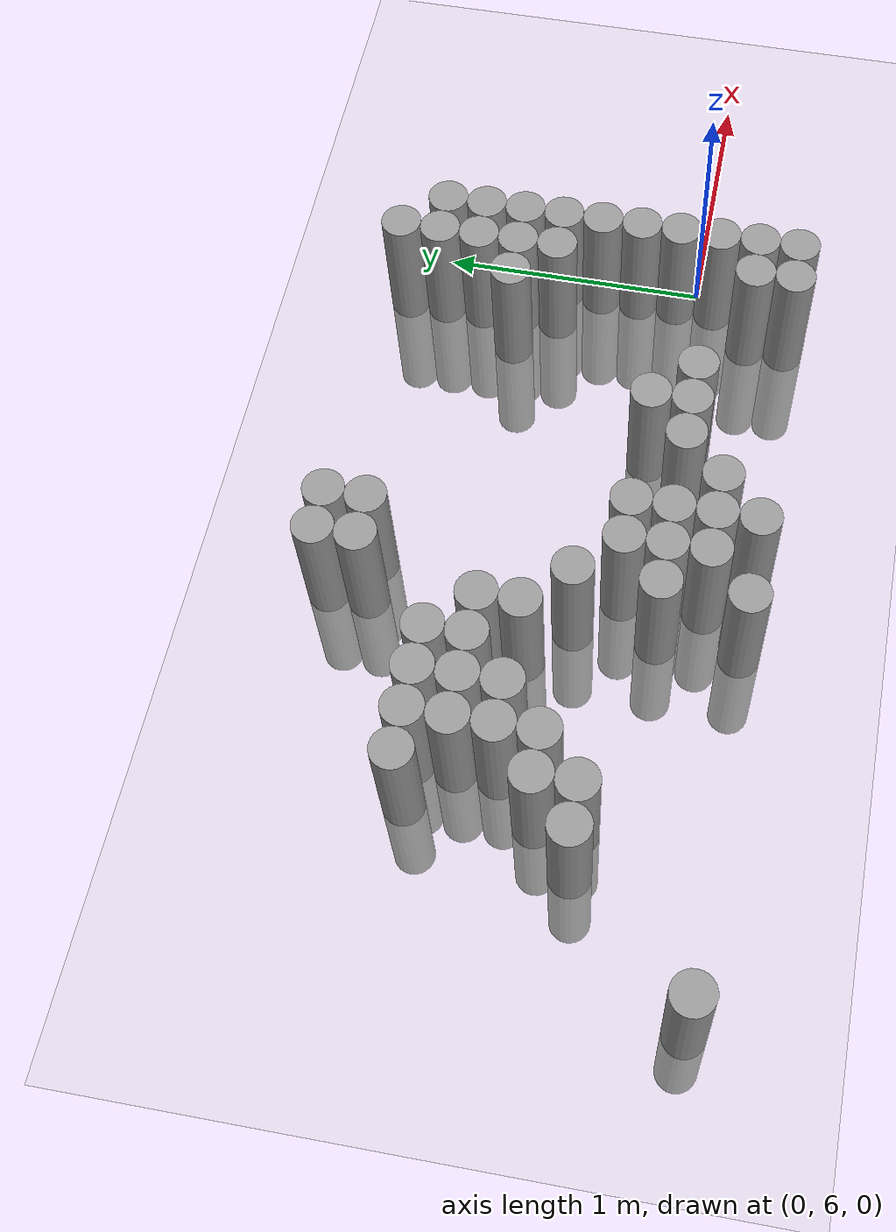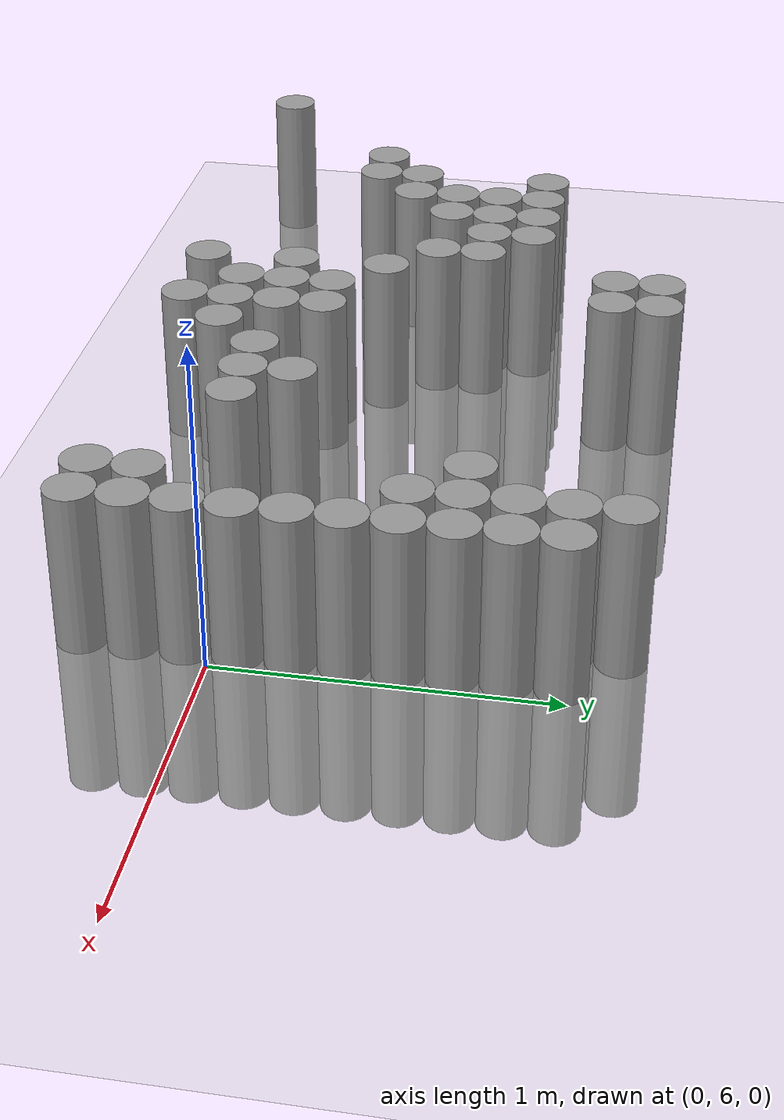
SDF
<sdf version="1.6">
 <world name="default">
  <model name="ground_plane">
   <static>1</static>
   <link name="link">
    <collision name="collision">
     <geometry><plane><normal>0 0 1</normal><size>100 100</size></plane></geometry>
     <surface><friction><ode><mu>100</mu><mu2>50</mu2></ode></friction></surface>
    </collision>
    <visual name="visual">
     <cast_shadows>0</cast_shadows>
     <geometry><plane><normal>0 0 1</normal><size>100 100</size></plane></geometry>
     <material>
      <script><uri>file://media/materials/scripts/gazebo.material</uri><name>Gazebo/Grey</name></script>
     </material>
    </visual>
   </link>
  </model>
  <model name="unit_cylinder_164">
   <pose>-2.925000 5.625000 0.000000 0.000000 0.000000 0.000000</pose>
   <link name="link">
    <inertial>
     <mass>1</mass>
     <inertia><ixx>0.145833</ixx><ixy>0</ixy><ixz>0</ixz><iyy>0.145833</iyy><iyz>0</iyz><izz>0.125</izz></inertia>
    </inertial>
    <collision name="collision">
     <geometry><cylinder><radius>0.075000</radius><length>1</length></cylinder></geometry>
    </collision>
    <visual name="visual">
     <geometry><cylinder><radius>0.075000</radius><length>1</length></cylinder></geometry>
     <material>
      <script><name>Gazebo/Grey</name><uri>file://media/materials/scripts/gazebo.material</uri></script>
     </material>
    </visual>
   </link>
  </model>
  <model name="unit_cylinder_165">
   <pose>-2.475000 6.075000 0.000000 0.000000 0.000000 0.000000</pose>
   <link name="link">
    <inertial>
     <mass>1</mass>
     <inertia><ixx>0.145833</ixx><ixy>0</ixy><ixz>0</ixz><iyy>0.145833</iyy><iyz>0</iyz><izz>0.125</izz></inertia>
    </inertial>
    <collision name="collision">
     <geometry><cylinder><radius>0.075000</radius><length>1</length></cylinder></geometry>
    </collision>
    <visual name="visual">
     <geometry><cylinder><radius>0.075000</radius><length>1</length></cylinder></geometry>
     <material>
      <script><name>Gazebo/Grey</name><uri>file://media/materials/scripts/gazebo.material</uri></script>
     </material>
    </visual>
   </link>
  </model>
  <model name="unit_cylinder_166">
   <pose>-2.325000 6.075000 0.000000 0.000000 0.000000 0.000000</pose>
   <link name="link">
    <inertial>
     <mass>1</mass>
     <inertia><ixx>0.145833</ixx><ixy>0</ixy><ixz>0</ixz><iyy>0.145833</iyy><iyz>0</iyz><izz>0.125</izz></inertia>
    </inertial>
    <collision name="collision">
     <geometry><cylinder><radius>0.075000</radius><length>1</length></cylinder></geometry>
    </collision>
    <visual name="visual">
     <geometry><cylinder><radius>0.075000</radius><length>1</length></cylinder></geometry>
     <material>
      <script><name>Gazebo/Grey</name><uri>file://media/materials/scripts/gazebo.material</uri></script>
     </material>
    </visual>
   </link>
  </model>
  <model name="unit_cylinder_167">
   <pose>-2.325000 6.225000 0.000000 0.000000 0.000000 0.000000</pose>
   <link name="link">
    <inertial>
     <mass>1</mass>
     <inertia><ixx>0.145833</ixx><ixy>0</ixy><ixz>0</ixz><iyy>0.145833</iyy><iyz>0</iyz><izz>0.125</izz></inertia>
    </inertial>
    <collision name="collision">
     <geometry><cylinder><radius>0.075000</radius><length>1</length></cylinder></geometry>
    </collision>
    <visual name="visual">
     <geometry><cylinder><radius>0.075000</radius><length>1</length></cylinder></geometry>
     <material>
      <script><name>Gazebo/Grey</name><uri>file://media/materials/scripts/gazebo.material</uri></script>
     </material>
    </visual>
   </link>
  </model>
  <model name="unit_cylinder_168">
   <pose>-2.325000 6.675000 0.000000 0.000000 0.000000 0.000000</pose>
   <link name="link">
    <inertial>
     <mass>1</mass>
     <inertia><ixx>0.145833</ixx><ixy>0</ixy><ixz>0</ixz><iyy>0.145833</iyy><iyz>0</iyz><izz>0.125</izz></inertia>
    </inertial>
    <collision name="collision">
     <geometry><cylinder><radius>0.075000</radius><length>1</length></cylinder></geometry>
    </collision>
    <visual name="visual">
     <geometry><cylinder><radius>0.075000</radius><length>1</length></cylinder></geometry>
     <material>
      <script><name>Gazebo/Grey</name><uri>file://media/materials/scripts/gazebo.material</uri></script>
     </material>
    </visual>
   </link>
  </model>
  <model name="unit_cylinder_169">
   <pose>-2.175000 6.225000 0.000000 0.000000 0.000000 0.000000</pose>
   <link name="link">
    <inertial>
     <mass>1</mass>
     <inertia><ixx>0.145833</ixx><ixy>0</ixy><ixz>0</ixz><iyy>0.145833</iyy><iyz>0</iyz><izz>0.125</izz></inertia>
    </inertial>
    <collision name="collision">
     <geometry><cylinder><radius>0.075000</radius><length>1</length></cylinder></geometry>
    </collision>
    <visual name="visual">
     <geometry><cylinder><radius>0.075000</radius><length>1</length></cylinder></geometry>
     <material>
      <script><name>Gazebo/Grey</name><uri>file://media/materials/scripts/gazebo.material</uri></script>
     </material>
    </visual>
   </link>
  </model>
  <model name="unit_cylinder_170">
   <pose>-2.175000 6.375000 0.000000 0.000000 0.000000 0.000000</pose>
   <link name="link">
    <inertial>
     <mass>1</mass>
     <inertia><ixx>0.145833</ixx><ixy>0</ixy><ixz>0</ixz><iyy>0.145833</iyy><iyz>0</iyz><izz>0.125</izz></inertia>
    </inertial>
    <collision name="collision">
     <geometry><cylinder><radius>0.075000</radius><length>1</length></cylinder></geometry>
    </collision>
    <visual name="visual">
     <geometry><cylinder><radius>0.075000</radius><length>1</length></cylinder></geometry>
     <material>
      <script><name>Gazebo/Grey</name><uri>file://media/materials/scripts/gazebo.material</uri></script>
     </material>
    </visual>
   </link>
  </model>
  <model name="unit_cylinder_171">
   <pose>-2.175000 6.525000 0.000000 0.000000 0.000000 0.000000</pose>
   <link name="link">
    <inertial>
     <mass>1</mass>
     <inertia><ixx>0.145833</ixx><ixy>0</ixy><ixz>0</ixz><iyy>0.145833</iyy><iyz>0</iyz><izz>0.125</izz></inertia>
    </inertial>
    <collision name="collision">
     <geometry><cylinder><radius>0.075000</radius><length>1</length></cylinder></geometry>
    </collision>
    <visual name="visual">
     <geometry><cylinder><radius>0.075000</radius><length>1</length></cylinder></geometry>
     <material>
      <script><name>Gazebo/Grey</name><uri>file://media/materials/scripts/gazebo.material</uri></script>
     </material>
    </visual>
   </link>
  </model>
  <model name="unit_cylinder_172">
   <pose>-2.175000 6.675000 0.000000 0.000000 0.000000 0.000000</pose>
   <link name="link">
    <inertial>
     <mass>1</mass>
     <inertia><ixx>0.145833</ixx><ixy>0</ixy><ixz>0</ixz><iyy>0.145833</iyy><iyz>0</iyz><izz>0.125</izz></inertia>
    </inertial>
    <collision name="collision">
     <geometry><cylinder><radius>0.075000</radius><length>1</length></cylinder></geometry>
    </collision>
    <visual name="visual">
     <geometry><cylinder><radius>0.075000</radius><length>1</length></cylinder></geometry>
     <material>
      <script><name>Gazebo/Grey</name><uri>file://media/materials/scripts/gazebo.material</uri></script>
     </material>
    </visual>
   </link>
  </model>
  <model name="unit_cylinder_173">
   <pose>-2.025000 6.375000 0.000000 0.000000 0.000000 0.000000</pose>
   <link name="link">
    <inertial>
     <mass>1</mass>
     <inertia><ixx>0.145833</ixx><ixy>0</ixy><ixz>0</ixz><iyy>0.145833</iyy><iyz>0</iyz><izz>0.125</izz></inertia>
    </inertial>
    <collision name="collision">
     <geometry><cylinder><radius>0.075000</radius><length>1</length></cylinder></geometry>
    </collision>
    <visual name="visual">
     <geometry><cylinder><radius>0.075000</radius><length>1</length></cylinder></geometry>
     <material>
      <script><name>Gazebo/Grey</name><uri>file://media/materials/scripts/gazebo.material</uri></script>
     </material>
    </visual>
   </link>
  </model>
  <model name="unit_cylinder_174">
   <pose>-2.025000 6.525000 0.000000 0.000000 0.000000 0.000000</pose>
   <link name="link">
    <inertial>
     <mass>1</mass>
     <inertia><ixx>0.145833</ixx><ixy>0</ixy><ixz>0</ixz><iyy>0.145833</iyy><iyz>0</iyz><izz>0.125</izz></inertia>
    </inertial>
    <collision name="collision">
     <geometry><cylinder><radius>0.075000</radius><length>1</length></cylinder></geometry>
    </collision>
    <visual name="visual">
     <geometry><cylinder><radius>0.075000</radius><length>1</length></cylinder></geometry>
     <material>
      <script><name>Gazebo/Grey</name><uri>file://media/materials/scripts/gazebo.material</uri></script>
     </material>
    </visual>
   </link>
  </model>
  <model name="unit_cylinder_175">
   <pose>-2.025000 6.675000 0.000000 0.000000 0.000000 0.000000</pose>
   <link name="link">
    <inertial>
     <mass>1</mass>
     <inertia><ixx>0.145833</ixx><ixy>0</ixy><ixz>0</ixz><iyy>0.145833</iyy><iyz>0</iyz><izz>0.125</izz></inertia>
    </inertial>
    <collision name="collision">
     <geometry><cylinder><radius>0.075000</radius><length>1</length></cylinder></geometry>
    </collision>
    <visual name="visual">
     <geometry><cylinder><radius>0.075000</radius><length>1</length></cylinder></geometry>
     <material>
      <script><name>Gazebo/Grey</name><uri>file://media/materials/scripts/gazebo.material</uri></script>
     </material>
    </visual>
   </link>
  </model>
  <model name="unit_cylinder_176">
   <pose>-1.875000 6.525000 0.000000 0.000000 0.000000 0.000000</pose>
   <link name="link">
    <inertial>
     <mass>1</mass>
     <inertia><ixx>0.145833</ixx><ixy>0</ixy><ixz>0</ixz><iyy>0.145833</iyy><iyz>0</iyz><izz>0.125</izz></inertia>
    </inertial>
    <collision name="collision">
     <geometry><cylinder><radius>0.075000</radius><length>1</length></cylinder></geometry>
    </collision>
    <visual name="visual">
     <geometry><cylinder><radius>0.075000</radius><length>1</length></cylinder></geometry>
     <material>
      <script><name>Gazebo/Grey</name><uri>file://media/materials/scripts/gazebo.material</uri></script>
     </material>
    </visual>
   </link>
  </model>
  <model name="unit_cylinder_177">
   <pose>-1.875000 6.675000 0.000000 0.000000 0.000000 0.000000</pose>
   <link name="link">
    <inertial>
     <mass>1</mass>
     <inertia><ixx>0.145833</ixx><ixy>0</ixy><ixz>0</ixz><iyy>0.145833</iyy><iyz>0</iyz><izz>0.125</izz></inertia>
    </inertial>
    <collision name="collision">
     <geometry><cylinder><radius>0.075000</radius><length>1</length></cylinder></geometry>
    </collision>
    <visual name="visual">
     <geometry><cylinder><radius>0.075000</radius><length>1</length></cylinder></geometry>
     <material>
      <script><name>Gazebo/Grey</name><uri>file://media/materials/scripts/gazebo.material</uri></script>
     </material>
    </visual>
   </link>
  </model>
  <model name="unit_cylinder_180">
   <pose>-1.725000 6.375000 0.000000 0.000000 0.000000 0.000000</pose>
   <link name="link">
    <inertial>
     <mass>1</mass>
     <inertia><ixx>0.145833</ixx><ixy>0</ixy><ixz>0</ixz><iyy>0.145833</iyy><iyz>0</iyz><izz>0.125</izz></inertia>
    </inertial>
    <collision name="collision">
     <geometry><cylinder><radius>0.075000</radius><length>1</length></cylinder></geometry>
    </collision>
    <visual name="visual">
     <geometry><cylinder><radius>0.075000</radius><length>1</length></cylinder></geometry>
     <material>
      <script><name>Gazebo/Grey</name><uri>file://media/materials/scripts/gazebo.material</uri></script>
     </material>
    </visual>
   </link>
  </model>
  <model name="unit_cylinder_181">
   <pose>-1.725000 6.525000 0.000000 0.000000 0.000000 0.000000</pose>
   <link name="link">
    <inertial>
     <mass>1</mass>
     <inertia><ixx>0.145833</ixx><ixy>0</ixy><ixz>0</ixz><iyy>0.145833</iyy><iyz>0</iyz><izz>0.125</izz></inertia>
    </inertial>
    <collision name="collision">
     <geometry><cylinder><radius>0.075000</radius><length>1</length></cylinder></geometry>
    </collision>
    <visual name="visual">
     <geometry><cylinder><radius>0.075000</radius><length>1</length></cylinder></geometry>
     <material>
      <script><name>Gazebo/Grey</name><uri>file://media/materials/scripts/gazebo.material</uri></script>
     </material>
    </visual>
   </link>
  </model>
  <model name="unit_cylinder_184">
   <pose>-1.575000 5.625000 0.000000 0.000000 0.000000 0.000000</pose>
   <link name="link">
    <inertial>
     <mass>1</mass>
     <inertia><ixx>0.145833</ixx><ixy>0</ixy><ixz>0</ixz><iyy>0.145833</iyy><iyz>0</iyz><izz>0.125</izz></inertia>
    </inertial>
    <collision name="collision">
     <geometry><cylinder><radius>0.075000</radius><length>1</length></cylinder></geometry>
    </collision>
    <visual name="visual">
     <geometry><cylinder><radius>0.075000</radius><length>1</length></cylinder></geometry>
     <material>
      <script><name>Gazebo/Grey</name><uri>file://media/materials/scripts/gazebo.material</uri></script>
     </material>
    </visual>
   </link>
  </model>
  <model name="unit_cylinder_185">
   <pose>-1.575000 5.925000 0.000000 0.000000 0.000000 0.000000</pose>
   <link name="link">
    <inertial>
     <mass>1</mass>
     <inertia><ixx>0.145833</ixx><ixy>0</ixy><ixz>0</ixz><iyy>0.145833</iyy><iyz>0</iyz><izz>0.125</izz></inertia>
    </inertial>
    <collision name="collision">
     <geometry><cylinder><radius>0.075000</radius><length>1</length></cylinder></geometry>
    </collision>
    <visual name="visual">
     <geometry><cylinder><radius>0.075000</radius><length>1</length></cylinder></geometry>
     <material>
      <script><name>Gazebo/Grey</name><uri>file://media/materials/scripts/gazebo.material</uri></script>
     </material>
    </visual>
   </link>
  </model>
  <model name="unit_cylinder_186">
   <pose>-1.575000 6.225000 0.000000 0.000000 0.000000 0.000000</pose>
   <link name="link">
    <inertial>
     <mass>1</mass>
     <inertia><ixx>0.145833</ixx><ixy>0</ixy><ixz>0</ixz><iyy>0.145833</iyy><iyz>0</iyz><izz>0.125</izz></inertia>
    </inertial>
    <collision name="collision">
     <geometry><cylinder><radius>0.075000</radius><length>1</length></cylinder></geometry>
    </collision>
    <visual name="visual">
     <geometry><cylinder><radius>0.075000</radius><length>1</length></cylinder></geometry>
     <material>
      <script><name>Gazebo/Grey</name><uri>file://media/materials/scripts/gazebo.material</uri></script>
     </material>
    </visual>
   </link>
  </model>
  <model name="unit_cylinder_187">
   <pose>-1.575000 6.975000 0.000000 0.000000 0.000000 0.000000</pose>
   <link name="link">
    <inertial>
     <mass>1</mass>
     <inertia><ixx>0.145833</ixx><ixy>0</ixy><ixz>0</ixz><iyy>0.145833</iyy><iyz>0</iyz><izz>0.125</izz></inertia>
    </inertial>
    <collision name="collision">
     <geometry><cylinder><radius>0.075000</radius><length>1</length></cylinder></geometry>
    </collision>
    <visual name="visual">
     <geometry><cylinder><radius>0.075000</radius><length>1</length></cylinder></geometry>
     <material>
      <script><name>Gazebo/Grey</name><uri>file://media/materials/scripts/gazebo.material</uri></script>
     </material>
    </visual>
   </link>
  </model>
  <model name="unit_cylinder_188">
   <pose>-1.575000 7.125000 0.000000 0.000000 0.000000 0.000000</pose>
   <link name="link">
    <inertial>
     <mass>1</mass>
     <inertia><ixx>0.145833</ixx><ixy>0</ixy><ixz>0</ixz><iyy>0.145833</iyy><iyz>0</iyz><izz>0.125</izz></inertia>
    </inertial>
    <collision name="collision">
     <geometry><cylinder><radius>0.075000</radius><length>1</length></cylinder></geometry>
    </collision>
    <visual name="visual">
     <geometry><cylinder><radius>0.075000</radius><length>1</length></cylinder></geometry>
     <material>
      <script><name>Gazebo/Grey</name><uri>file://media/materials/scripts/gazebo.material</uri></script>
     </material>
    </visual>
   </link>
  </model>
  <model name="unit_cylinder_194">
   <pose>-1.425000 5.775000 0.000000 0.000000 0.000000 0.000000</pose>
   <link name="link">
    <inertial>
     <mass>1</mass>
     <inertia><ixx>0.145833</ixx><ixy>0</ixy><ixz>0</ixz><iyy>0.145833</iyy><iyz>0</iyz><izz>0.125</izz></inertia>
    </inertial>
    <collision name="collision">
     <geometry><cylinder><radius>0.075000</radius><length>1</length></cylinder></geometry>
    </collision>
    <visual name="visual">
     <geometry><cylinder><radius>0.075000</radius><length>1</length></cylinder></geometry>
     <material>
      <script><name>Gazebo/Grey</name><uri>file://media/materials/scripts/gazebo.material</uri></script>
     </material>
    </visual>
   </link>
  </model>
  <model name="unit_cylinder_195">
   <pose>-1.425000 5.925000 0.000000 0.000000 0.000000 0.000000</pose>
   <link name="link">
    <inertial>
     <mass>1</mass>
     <inertia><ixx>0.145833</ixx><ixy>0</ixy><ixz>0</ixz><iyy>0.145833</iyy><iyz>0</iyz><izz>0.125</izz></inertia>
    </inertial>
    <collision name="collision">
     <geometry><cylinder><radius>0.075000</radius><length>1</length></cylinder></geometry>
    </collision>
    <visual name="visual">
     <geometry><cylinder><radius>0.075000</radius><length>1</length></cylinder></geometry>
     <material>
      <script><name>Gazebo/Grey</name><uri>file://media/materials/scripts/gazebo.material</uri></script>
     </material>
    </visual>
   </link>
  </model>
  <model name="unit_cylinder_196">
   <pose>-1.425000 6.075000 0.000000 0.000000 0.000000 0.000000</pose>
   <link name="link">
    <inertial>
     <mass>1</mass>
     <inertia><ixx>0.145833</ixx><ixy>0</ixy><ixz>0</ixz><iyy>0.145833</iyy><iyz>0</iyz><izz>0.125</izz></inertia>
    </inertial>
    <collision name="collision">
     <geometry><cylinder><radius>0.075000</radius><length>1</length></cylinder></geometry>
    </collision>
    <visual name="visual">
     <geometry><cylinder><radius>0.075000</radius><length>1</length></cylinder></geometry>
     <material>
      <script><name>Gazebo/Grey</name><uri>file://media/materials/scripts/gazebo.material</uri></script>
     </material>
    </visual>
   </link>
  </model>
  <model name="unit_cylinder_197">
   <pose>-1.425000 6.975000 0.000000 0.000000 0.000000 0.000000</pose>
   <link name="link">
    <inertial>
     <mass>1</mass>
     <inertia><ixx>0.145833</ixx><ixy>0</ixy><ixz>0</ixz><iyy>0.145833</iyy><iyz>0</iyz><izz>0.125</izz></inertia>
    </inertial>
    <collision name="collision">
     <geometry><cylinder><radius>0.075000</radius><length>1</length></cylinder></geometry>
    </collision>
    <visual name="visual">
     <geometry><cylinder><radius>0.075000</radius><length>1</length></cylinder></geometry>
     <material>
      <script><name>Gazebo/Grey</name><uri>file://media/materials/scripts/gazebo.material</uri></script>
     </material>
    </visual>
   </link>
  </model>
  <model name="unit_cylinder_198">
   <pose>-1.425000 7.125000 0.000000 0.000000 0.000000 0.000000</pose>
   <link name="link">
    <inertial>
     <mass>1</mass>
     <inertia><ixx>0.145833</ixx><ixy>0</ixy><ixz>0</ixz><iyy>0.145833</iyy><iyz>0</iyz><izz>0.125</izz></inertia>
    </inertial>
    <collision name="collision">
     <geometry><cylinder><radius>0.075000</radius><length>1</length></cylinder></geometry>
    </collision>
    <visual name="visual">
     <geometry><cylinder><radius>0.075000</radius><length>1</length></cylinder></geometry>
     <material>
      <script><name>Gazebo/Grey</name><uri>file://media/materials/scripts/gazebo.material</uri></script>
     </material>
    </visual>
   </link>
  </model>
  <model name="unit_cylinder_202">
   <pose>-1.275000 5.625000 0.000000 0.000000 0.000000 0.000000</pose>
   <link name="link">
    <inertial>
     <mass>1</mass>
     <inertia><ixx>0.145833</ixx><ixy>0</ixy><ixz>0</ixz><iyy>0.145833</iyy><iyz>0</iyz><izz>0.125</izz></inertia>
    </inertial>
    <collision name="collision">
     <geometry><cylinder><radius>0.075000</radius><length>1</length></cylinder></geometry>
    </collision>
    <visual name="visual">
     <geometry><cylinder><radius>0.075000</radius><length>1</length></cylinder></geometry>
     <material>
      <script><name>Gazebo/Grey</name><uri>file://media/materials/scripts/gazebo.material</uri></script>
     </material>
    </visual>
   </link>
  </model>
  <model name="unit_cylinder_203">
   <pose>-1.275000 5.775000 0.000000 0.000000 0.000000 0.000000</pose>
   <link name="link">
    <inertial>
     <mass>1</mass>
     <inertia><ixx>0.145833</ixx><ixy>0</ixy><ixz>0</ixz><iyy>0.145833</iyy><iyz>0</iyz><izz>0.125</izz></inertia>
    </inertial>
    <collision name="collision">
     <geometry><cylinder><radius>0.075000</radius><length>1</length></cylinder></geometry>
    </collision>
    <visual name="visual">
     <geometry><cylinder><radius>0.075000</radius><length>1</length></cylinder></geometry>
     <material>
      <script><name>Gazebo/Grey</name><uri>file://media/materials/scripts/gazebo.material</uri></script>
     </material>
    </visual>
   </link>
  </model>
  <model name="unit_cylinder_204">
   <pose>-1.275000 5.925000 0.000000 0.000000 0.000000 0.000000</pose>
   <link name="link">
    <inertial>
     <mass>1</mass>
     <inertia><ixx>0.145833</ixx><ixy>0</ixy><ixz>0</ixz><iyy>0.145833</iyy><iyz>0</iyz><izz>0.125</izz></inertia>
    </inertial>
    <collision name="collision">
     <geometry><cylinder><radius>0.075000</radius><length>1</length></cylinder></geometry>
    </collision>
    <visual name="visual">
     <geometry><cylinder><radius>0.075000</radius><length>1</length></cylinder></geometry>
     <material>
      <script><name>Gazebo/Grey</name><uri>file://media/materials/scripts/gazebo.material</uri></script>
     </material>
    </visual>
   </link>
  </model>
  <model name="unit_cylinder_205">
   <pose>-1.275000 6.075000 0.000000 0.000000 0.000000 0.000000</pose>
   <link name="link">
    <inertial>
     <mass>1</mass>
     <inertia><ixx>0.145833</ixx><ixy>0</ixy><ixz>0</ixz><iyy>0.145833</iyy><iyz>0</iyz><izz>0.125</izz></inertia>
    </inertial>
    <collision name="collision">
     <geometry><cylinder><radius>0.075000</radius><length>1</length></cylinder></geometry>
    </collision>
    <visual name="visual">
     <geometry><cylinder><radius>0.075000</radius><length>1</length></cylinder></geometry>
     <material>
      <script><name>Gazebo/Grey</name><uri>file://media/materials/scripts/gazebo.material</uri></script>
     </material>
    </visual>
   </link>
  </model>
  <model name="unit_cylinder_210">
   <pose>-1.125000 5.775000 0.000000 0.000000 0.000000 0.000000</pose>
   <link name="link">
    <inertial>
     <mass>1</mass>
     <inertia><ixx>0.145833</ixx><ixy>0</ixy><ixz>0</ixz><iyy>0.145833</iyy><iyz>0</iyz><izz>0.125</izz></inertia>
    </inertial>
    <collision name="collision">
     <geometry><cylinder><radius>0.075000</radius><length>1</length></cylinder></geometry>
    </collision>
    <visual name="visual">
     <geometry><cylinder><radius>0.075000</radius><length>1</length></cylinder></geometry>
     <material>
      <script><name>Gazebo/Grey</name><uri>file://media/materials/scripts/gazebo.material</uri></script>
     </material>
    </visual>
   </link>
  </model>
  <model name="unit_cylinder_215">
   <pose>-0.975000 5.925000 0.000000 0.000000 0.000000 0.000000</pose>
   <link name="link">
    <inertial>
     <mass>1</mass>
     <inertia><ixx>0.145833</ixx><ixy>0</ixy><ixz>0</ixz><iyy>0.145833</iyy><iyz>0</iyz><izz>0.125</izz></inertia>
    </inertial>
    <collision name="collision">
     <geometry><cylinder><radius>0.075000</radius><length>1</length></cylinder></geometry>
    </collision>
    <visual name="visual">
     <geometry><cylinder><radius>0.075000</radius><length>1</length></cylinder></geometry>
     <material>
      <script><name>Gazebo/Grey</name><uri>file://media/materials/scripts/gazebo.material</uri></script>
     </material>
    </visual>
   </link>
  </model>
  <model name="unit_cylinder_219">
   <pose>-0.825000 5.925000 0.000000 0.000000 0.000000 0.000000</pose>
   <link name="link">
    <inertial>
     <mass>1</mass>
     <inertia><ixx>0.145833</ixx><ixy>0</ixy><ixz>0</ixz><iyy>0.145833</iyy><iyz>0</iyz><izz>0.125</izz></inertia>
    </inertial>
    <collision name="collision">
     <geometry><cylinder><radius>0.075000</radius><length>1</length></cylinder></geometry>
    </collision>
    <visual name="visual">
     <geometry><cylinder><radius>0.075000</radius><length>1</length></cylinder></geometry>
     <material>
      <script><name>Gazebo/Grey</name><uri>file://media/materials/scripts/gazebo.material</uri></script>
     </material>
    </visual>
   </link>
  </model>
  <model name="unit_cylinder_220">
   <pose>-0.825000 6.075000 0.000000 0.000000 0.000000 0.000000</pose>
   <link name="link">
    <inertial>
     <mass>1</mass>
     <inertia><ixx>0.145833</ixx><ixy>0</ixy><ixz>0</ixz><iyy>0.145833</iyy><iyz>0</iyz><izz>0.125</izz></inertia>
    </inertial>
    <collision name="collision">
     <geometry><cylinder><radius>0.075000</radius><length>1</length></cylinder></geometry>
    </collision>
    <visual name="visual">
     <geometry><cylinder><radius>0.075000</radius><length>1</length></cylinder></geometry>
     <material>
      <script><name>Gazebo/Grey</name><uri>file://media/materials/scripts/gazebo.material</uri></script>
     </material>
    </visual>
   </link>
  </model>
  <model name="unit_cylinder_221">
   <pose>-0.675000 5.925000 0.000000 0.000000 0.000000 0.000000</pose>
   <link name="link">
    <inertial>
     <mass>1</mass>
     <inertia><ixx>0.145833</ixx><ixy>0</ixy><ixz>0</ixz><iyy>0.145833</iyy><iyz>0</iyz><izz>0.125</izz></inertia>
    </inertial>
    <collision name="collision">
     <geometry><cylinder><radius>0.075000</radius><length>1</length></cylinder></geometry>
    </collision>
    <visual name="visual">
     <geometry><cylinder><radius>0.075000</radius><length>1</length></cylinder></geometry>
     <material>
      <script><name>Gazebo/Grey</name><uri>file://media/materials/scripts/gazebo.material</uri></script>
     </material>
    </visual>
   </link>
  </model>
  <model name="unit_cylinder_222">
   <pose>-0.375000 6.675000 0.000000 0.000000 0.000000 0.000000</pose>
   <link name="link">
    <inertial>
     <mass>1</mass>
     <inertia><ixx>0.145833</ixx><ixy>0</ixy><ixz>0</ixz><iyy>0.145833</iyy><iyz>0</iyz><izz>0.125</izz></inertia>
    </inertial>
    <collision name="collision">
     <geometry><cylinder><radius>0.075000</radius><length>1</length></cylinder></geometry>
    </collision>
    <visual name="visual">
     <geometry><cylinder><radius>0.075000</radius><length>1</length></cylinder></geometry>
     <material>
      <script><name>Gazebo/Grey</name><uri>file://media/materials/scripts/gazebo.material</uri></script>
     </material>
    </visual>
   </link>
  </model>
  <model name="unit_cylinder_224">
   <pose>-0.225000 5.625000 0.000000 0.000000 0.000000 0.000000</pose>
   <link name="link">
    <inertial>
     <mass>1</mass>
     <inertia><ixx>0.145833</ixx><ixy>0</ixy><ixz>0</ixz><iyy>0.145833</iyy><iyz>0</iyz><izz>0.125</izz></inertia>
    </inertial>
    <collision name="collision">
     <geometry><cylinder><radius>0.075000</radius><length>1</length></cylinder></geometry>
    </collision>
    <visual name="visual">
     <geometry><cylinder><radius>0.075000</radius><length>1</length></cylinder></geometry>
     <material>
      <script><name>Gazebo/Grey</name><uri>file://media/materials/scripts/gazebo.material</uri></script>
     </material>
    </visual>
   </link>
  </model>
  <model name="unit_cylinder_225">
   <pose>-0.225000 5.775000 0.000000 0.000000 0.000000 0.000000</pose>
   <link name="link">
    <inertial>
     <mass>1</mass>
     <inertia><ixx>0.145833</ixx><ixy>0</ixy><ixz>0</ixz><iyy>0.145833</iyy><iyz>0</iyz><izz>0.125</izz></inertia>
    </inertial>
    <collision name="collision">
     <geometry><cylinder><radius>0.075000</radius><length>1</length></cylinder></geometry>
    </collision>
    <visual name="visual">
     <geometry><cylinder><radius>0.075000</radius><length>1</length></cylinder></geometry>
     <material>
      <script><name>Gazebo/Grey</name><uri>file://media/materials/scripts/gazebo.material</uri></script>
     </material>
    </visual>
   </link>
  </model>
  <model name="unit_cylinder_226">
   <pose>-0.225000 6.525000 0.000000 0.000000 0.000000 0.000000</pose>
   <link name="link">
    <inertial>
     <mass>1</mass>
     <inertia><ixx>0.145833</ixx><ixy>0</ixy><ixz>0</ixz><iyy>0.145833</iyy><iyz>0</iyz><izz>0.125</izz></inertia>
    </inertial>
    <collision name="collision">
     <geometry><cylinder><radius>0.075000</radius><length>1</length></cylinder></geometry>
    </collision>
    <visual name="visual">
     <geometry><cylinder><radius>0.075000</radius><length>1</length></cylinder></geometry>
     <material>
      <script><name>Gazebo/Grey</name><uri>file://media/materials/scripts/gazebo.material</uri></script>
     </material>
    </visual>
   </link>
  </model>
  <model name="unit_cylinder_227">
   <pose>-0.225000 6.675000 0.000000 0.000000 0.000000 0.000000</pose>
   <link name="link">
    <inertial>
     <mass>1</mass>
     <inertia><ixx>0.145833</ixx><ixy>0</ixy><ixz>0</ixz><iyy>0.145833</iyy><iyz>0</iyz><izz>0.125</izz></inertia>
    </inertial>
    <collision name="collision">
     <geometry><cylinder><radius>0.075000</radius><length>1</length></cylinder></geometry>
    </collision>
    <visual name="visual">
     <geometry><cylinder><radius>0.075000</radius><length>1</length></cylinder></geometry>
     <material>
      <script><name>Gazebo/Grey</name><uri>file://media/materials/scripts/gazebo.material</uri></script>
     </material>
    </visual>
   </link>
  </model>
  <model name="unit_cylinder_228">
   <pose>-0.225000 6.825000 0.000000 0.000000 0.000000 0.000000</pose>
   <link name="link">
    <inertial>
     <mass>1</mass>
     <inertia><ixx>0.145833</ixx><ixy>0</ixy><ixz>0</ixz><iyy>0.145833</iyy><iyz>0</iyz><izz>0.125</izz></inertia>
    </inertial>
    <collision name="collision">
     <geometry><cylinder><radius>0.075000</radius><length>1</length></cylinder></geometry>
    </collision>
    <visual name="visual">
     <geometry><cylinder><radius>0.075000</radius><length>1</length></cylinder></geometry>
     <material>
      <script><name>Gazebo/Grey</name><uri>file://media/materials/scripts/gazebo.material</uri></script>
     </material>
    </visual>
   </link>
  </model>
  <model name="unit_cylinder_229">
   <pose>-0.225000 6.975000 0.000000 0.000000 0.000000 0.000000</pose>
   <link name="link">
    <inertial>
     <mass>1</mass>
     <inertia><ixx>0.145833</ixx><ixy>0</ixy><ixz>0</ixz><iyy>0.145833</iyy><iyz>0</iyz><izz>0.125</izz></inertia>
    </inertial>
    <collision name="collision">
     <geometry><cylinder><radius>0.075000</radius><length>1</length></cylinder></geometry>
    </collision>
    <visual name="visual">
     <geometry><cylinder><radius>0.075000</radius><length>1</length></cylinder></geometry>
     <material>
      <script><name>Gazebo/Grey</name><uri>file://media/materials/scripts/gazebo.material</uri></script>
     </material>
    </visual>
   </link>
  </model>
  <model name="unit_cylinder_230">
   <pose>-0.225000 7.125000 0.000000 0.000000 0.000000 0.000000</pose>
   <link name="link">
    <inertial>
     <mass>1</mass>
     <inertia><ixx>0.145833</ixx><ixy>0</ixy><ixz>0</ixz><iyy>0.145833</iyy><iyz>0</iyz><izz>0.125</izz></inertia>
    </inertial>
    <collision name="collision">
     <geometry><cylinder><radius>0.075000</radius><length>1</length></cylinder></geometry>
    </collision>
    <visual name="visual">
     <geometry><cylinder><radius>0.075000</radius><length>1</length></cylinder></geometry>
     <material>
      <script><name>Gazebo/Grey</name><uri>file://media/materials/scripts/gazebo.material</uri></script>
     </material>
    </visual>
   </link>
  </model>
  <model name="unit_cylinder_242">
   <pose>-0.075000 5.625000 0.000000 0.000000 0.000000 0.000000</pose>
   <link name="link">
    <inertial>
     <mass>1</mass>
     <inertia><ixx>0.145833</ixx><ixy>0</ixy><ixz>0</ixz><iyy>0.145833</iyy><iyz>0</iyz><izz>0.125</izz></inertia>
    </inertial>
    <collision name="collision">
     <geometry><cylinder><radius>0.075000</radius><length>1</length></cylinder></geometry>
    </collision>
    <visual name="visual">
     <geometry><cylinder><radius>0.075000</radius><length>1</length></cylinder></geometry>
     <material>
      <script><name>Gazebo/Grey</name><uri>file://media/materials/scripts/gazebo.material</uri></script>
     </material>
    </visual>
   </link>
  </model>
  <model name="unit_cylinder_243">
   <pose>-0.075000 5.775000 0.000000 0.000000 0.000000 0.000000</pose>
   <link name="link">
    <inertial>
     <mass>1</mass>
     <inertia><ixx>0.145833</ixx><ixy>0</ixy><ixz>0</ixz><iyy>0.145833</iyy><iyz>0</iyz><izz>0.125</izz></inertia>
    </inertial>
    <collision name="collision">
     <geometry><cylinder><radius>0.075000</radius><length>1</length></cylinder></geometry>
    </collision>
    <visual name="visual">
     <geometry><cylinder><radius>0.075000</radius><length>1</length></cylinder></geometry>
     <material>
      <script><name>Gazebo/Grey</name><uri>file://media/materials/scripts/gazebo.material</uri></script>
     </material>
    </visual>
   </link>
  </model>
  <model name="unit_cylinder_244">
   <pose>-0.075000 5.925000 0.000000 0.000000 0.000000 0.000000</pose>
   <link name="link">
    <inertial>
     <mass>1</mass>
     <inertia><ixx>0.145833</ixx><ixy>0</ixy><ixz>0</ixz><iyy>0.145833</iyy><iyz>0</iyz><izz>0.125</izz></inertia>
    </inertial>
    <collision name="collision">
     <geometry><cylinder><radius>0.075000</radius><length>1</length></cylinder></geometry>
    </collision>
    <visual name="visual">
     <geometry><cylinder><radius>0.075000</radius><length>1</length></cylinder></geometry>
     <material>
      <script><name>Gazebo/Grey</name><uri>file://media/materials/scripts/gazebo.material</uri></script>
     </material>
    </visual>
   </link>
  </model>
  <model name="unit_cylinder_245">
   <pose>-0.075000 6.075000 0.000000 0.000000 0.000000 0.000000</pose>
   <link name="link">
    <inertial>
     <mass>1</mass>
     <inertia><ixx>0.145833</ixx><ixy>0</ixy><ixz>0</ixz><iyy>0.145833</iyy><iyz>0</iyz><izz>0.125</izz></inertia>
    </inertial>
    <collision name="collision">
     <geometry><cylinder><radius>0.075000</radius><length>1</length></cylinder></geometry>
    </collision>
    <visual name="visual">
     <geometry><cylinder><radius>0.075000</radius><length>1</length></cylinder></geometry>
     <material>
      <script><name>Gazebo/Grey</name><uri>file://media/materials/scripts/gazebo.material</uri></script>
     </material>
    </visual>
   </link>
  </model>
  <model name="unit_cylinder_246">
   <pose>-0.075000 6.225000 0.000000 0.000000 0.000000 0.000000</pose>
   <link name="link">
    <inertial>
     <mass>1</mass>
     <inertia><ixx>0.145833</ixx><ixy>0</ixy><ixz>0</ixz><iyy>0.145833</iyy><iyz>0</iyz><izz>0.125</izz></inertia>
    </inertial>
    <collision name="collision">
     <geometry><cylinder><radius>0.075000</radius><length>1</length></cylinder></geometry>
    </collision>
    <visual name="visual">
     <geometry><cylinder><radius>0.075000</radius><length>1</length></cylinder></geometry>
     <material>
      <script><name>Gazebo/Grey</name><uri>file://media/materials/scripts/gazebo.material</uri></script>
     </material>
    </visual>
   </link>
  </model>
  <model name="unit_cylinder_247">
   <pose>-0.075000 6.375000 0.000000 0.000000 0.000000 0.000000</pose>
   <link name="link">
    <inertial>
     <mass>1</mass>
     <inertia><ixx>0.145833</ixx><ixy>0</ixy><ixz>0</ixz><iyy>0.145833</iyy><iyz>0</iyz><izz>0.125</izz></inertia>
    </inertial>
    <collision name="collision">
     <geometry><cylinder><radius>0.075000</radius><length>1</length></cylinder></geometry>
    </collision>
    <visual name="visual">
     <geometry><cylinder><radius>0.075000</radius><length>1</length></cylinder></geometry>
     <material>
      <script><name>Gazebo/Grey</name><uri>file://media/materials/scripts/gazebo.material</uri></script>
     </material>
    </visual>
   </link>
  </model>
  <model name="unit_cylinder_248">
   <pose>-0.075000 6.525000 0.000000 0.000000 0.000000 0.000000</pose>
   <link name="link">
    <inertial>
     <mass>1</mass>
     <inertia><ixx>0.145833</ixx><ixy>0</ixy><ixz>0</ixz><iyy>0.145833</iyy><iyz>0</iyz><izz>0.125</izz></inertia>
    </inertial>
    <collision name="collision">
     <geometry><cylinder><radius>0.075000</radius><length>1</length></cylinder></geometry>
    </collision>
    <visual name="visual">
     <geometry><cylinder><radius>0.075000</radius><length>1</length></cylinder></geometry>
     <material>
      <script><name>Gazebo/Grey</name><uri>file://media/materials/scripts/gazebo.material</uri></script>
     </material>
    </visual>
   </link>
  </model>
  <model name="unit_cylinder_249">
   <pose>-0.075000 6.675000 0.000000 0.000000 0.000000 0.000000</pose>
   <link name="link">
    <inertial>
     <mass>1</mass>
     <inertia><ixx>0.145833</ixx><ixy>0</ixy><ixz>0</ixz><iyy>0.145833</iyy><iyz>0</iyz><izz>0.125</izz></inertia>
    </inertial>
    <collision name="collision">
     <geometry><cylinder><radius>0.075000</radius><length>1</length></cylinder></geometry>
    </collision>
    <visual name="visual">
     <geometry><cylinder><radius>0.075000</radius><length>1</length></cylinder></geometry>
     <material>
      <script><name>Gazebo/Grey</name><uri>file://media/materials/scripts/gazebo.material</uri></script>
     </material>
    </visual>
   </link>
  </model>
  <model name="unit_cylinder_250">
   <pose>-0.075000 6.825000 0.000000 0.000000 0.000000 0.000000</pose>
   <link name="link">
    <inertial>
     <mass>1</mass>
     <inertia><ixx>0.145833</ixx><ixy>0</ixy><ixz>0</ixz><iyy>0.145833</iyy><iyz>0</iyz><izz>0.125</izz></inertia>
    </inertial>
    <collision name="collision">
     <geometry><cylinder><radius>0.075000</radius><length>1</length></cylinder></geometry>
    </collision>
    <visual name="visual">
     <geometry><cylinder><radius>0.075000</radius><length>1</length></cylinder></geometry>
     <material>
      <script><name>Gazebo/Grey</name><uri>file://media/materials/scripts/gazebo.material</uri></script>
     </material>
    </visual>
   </link>
  </model>
  <model name="unit_cylinder_251">
   <pose>-0.075000 6.975000 0.000000 0.000000 0.000000 0.000000</pose>
   <link name="link">
    <inertial>
     <mass>1</mass>
     <inertia><ixx>0.145833</ixx><ixy>0</ixy><ixz>0</ixz><iyy>0.145833</iyy><iyz>0</iyz><izz>0.125</izz></inertia>
    </inertial>
    <collision name="collision">
     <geometry><cylinder><radius>0.075000</radius><length>1</length></cylinder></geometry>
    </collision>
    <visual name="visual">
     <geometry><cylinder><radius>0.075000</radius><length>1</length></cylinder></geometry>
     <material>
      <script><name>Gazebo/Grey</name><uri>file://media/materials/scripts/gazebo.material</uri></script>
     </material>
    </visual>
   </link>
  </model>
 </world>
</sdf>
